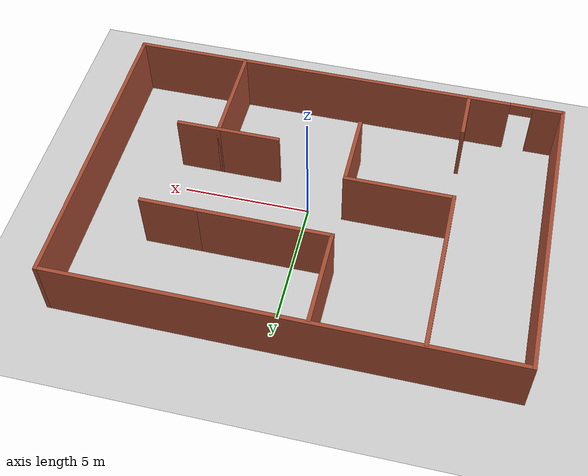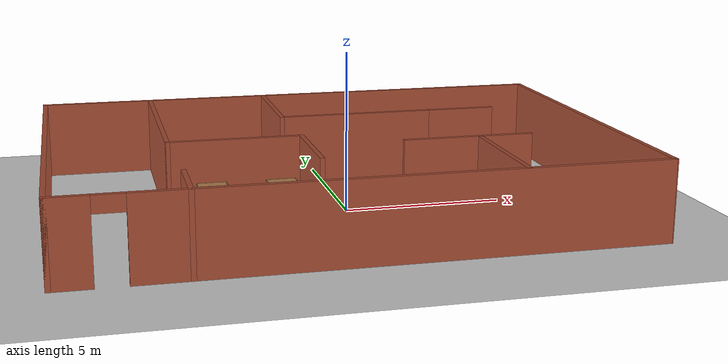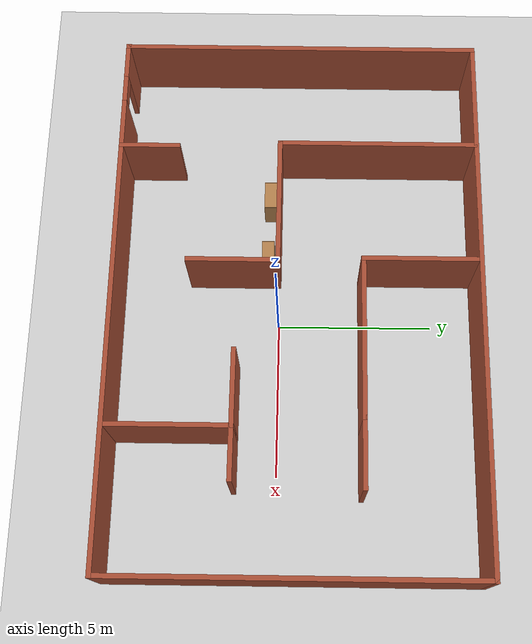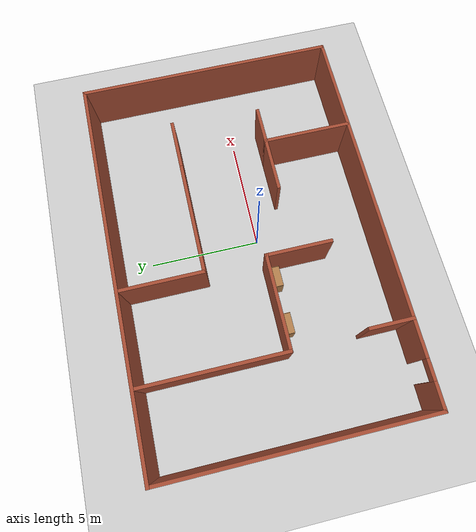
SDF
<sdf version="1.7">
 <world name="default">
  <light name="sun" type="directional">
   <pose>0 0 10 0 -0 0</pose>
   <diffuse>0.8 0.8 0.8 1</diffuse>
   <specular>0.2 0.2 0.2 1</specular>
   <attenuation>
    <range>1000</range>
    <constant>0.9</constant>
    <linear>0.01</linear>
    <quadratic>0.001</quadratic>
   </attenuation>
   <direction>-0.5 0.1 -0.9</direction>
   <spot><inner_angle>0</inner_angle><outer_angle>0</outer_angle><falloff>0</falloff></spot>
  </light>
  <model name="ground_plane">
   <static>1</static>
   <link name="link">
    <collision name="collision">
     <geometry><plane><normal>0 0 1</normal><size>100 100</size></plane></geometry>
     <surface>
      <contact><collide_bitmask>65535</collide_bitmask></contact>
      <friction><ode><mu>100</mu><mu2>50</mu2></ode></friction>
     </surface>
    </collision>
    <visual name="visual">
     <cast_shadows>0</cast_shadows>
     <geometry><plane><normal>0 0 1</normal><size>100 100</size></plane></geometry>
     <material>
      <script><uri>file://media/materials/scripts/gazebo.material</uri><name>Gazebo/Grey</name></script>
     </material>
    </visual>
   </link>
  </model>
  <gravity>0 0 -9.8</gravity>
  <magnetic_field>6e-06 2.3e-05 -4.2e-05</magnetic_field>
  <atmosphere type="adiabatic"/>
  <physics type="ode">
   <max_step_size>0.001</max_step_size>
   <real_time_factor>1</real_time_factor>
   <real_time_update_rate>1000</real_time_update_rate>
  </physics>
  <scene><ambient>0.4 0.4 0.4 1</ambient><background>0.7 0.7 0.7 1</background><shadows>1</shadows></scene>
  <audio><device>default</device></audio>
  <spherical_coordinates>
   <surface_model>EARTH_WGS84</surface_model>
   <latitude_deg>0</latitude_deg>
   <longitude_deg>0</longitude_deg>
   <elevation>0</elevation>
   <heading_deg>0</heading_deg>
  </spherical_coordinates>
  <model name="my_house">
   <pose>-0.107976 0.590678 0 0 -0 0</pose>
   <link name="Wall_10">
    <collision name="Wall_10_Collision">
     <geometry><box><size>11.75 0.15 2.5</size></box></geometry>
     <pose>0 0 1.25 0 -0 0</pose>
    </collision>
    <visual name="Wall_10_Visual">
     <pose>0 0 1.25 0 -0 0</pose>
     <geometry><box><size>11.75 0.15 2.5</size></box></geometry>
     <material>
      <script><uri>file://media/materials/scripts/gazebo.material</uri><name>Gazebo/Bricks</name></script>
      <ambient>1 1 1 1</ambient>
     </material>
     <meta><layer>0</layer></meta>
    </visual>
    <pose>-8.98864 9e-06 0 0 -0 -1.5708</pose>
   </link>
   <link name="Wall_12">
    <collision name="Wall_12_Collision">
     <geometry><box><size>6.5 0.15 2.5</size></box></geometry>
     <pose>0 0 1.25 0 -0 0</pose>
    </collision>
    <visual name="Wall_12_Visual">
     <pose>0 0 1.25 0 -0 0</pose>
     <geometry><box><size>6.5 0.15 2.5</size></box></geometry>
     <material>
      <script><uri>file://media/materials/scripts/gazebo.material</uri><name>Gazebo/Bricks</name></script>
      <ambient>1 1 1 1</ambient>
     </material>
     <meta><layer>0</layer></meta>
    </visual>
    <pose>-5.41983 2.56292 0 0 -0 -1.5708</pose>
   </link>
   <link name="Wall_14">
    <collision name="Wall_14_Collision">
     <geometry><box><size>2 0.15 2.5</size></box></geometry>
     <pose>0 0 1.25 0 -0 0</pose>
    </collision>
    <visual name="Wall_14_Visual">
     <pose>0 0 1.25 0 -0 0</pose>
     <geometry><box><size>2 0.15 2.5</size></box></geometry>
     <material>
      <script><uri>file://media/materials/scripts/gazebo.material</uri><name>Gazebo/Bricks</name></script>
      <ambient>1 1 1 1</ambient>
     </material>
     <meta><layer>0</layer></meta>
    </visual>
    <pose>-5.28026 -4.87501 0 0 -0 1.5708</pose>
   </link>
   <link name="Wall_16">
    <collision name="Wall_16_Collision">
     <geometry><box><size>4.25 0.15 2.5</size></box></geometry>
     <pose>0 0 1.25 0 -0 0</pose>
    </collision>
    <visual name="Wall_16_Visual">
     <pose>0 0 1.25 0 -0 0</pose>
     <geometry><box><size>4.25 0.15 2.5</size></box></geometry>
     <material>
      <script><uri>file://media/materials/scripts/gazebo.material</uri><name>Gazebo/Bricks</name></script>
      <ambient>1 1 1 1</ambient>
     </material>
     <meta><layer>0</layer></meta>
    </visual>
    <pose>-3.36984 -0.612078 0 0 -0 0</pose>
   </link>
   <link name="Wall_17">
    <collision name="Wall_17_Collision">
     <geometry><box><size>3 0.15 2.5</size></box></geometry>
     <pose>0 0 1.25 0 -0 0</pose>
    </collision>
    <visual name="Wall_17_Visual">
     <pose>0 0 1.25 0 -0 0</pose>
     <geometry><box><size>3 0.15 2.5</size></box></geometry>
     <material>
      <script><uri>file://media/materials/scripts/gazebo.material</uri><name>Gazebo/Bricks</name></script>
      <ambient>1 1 1 1</ambient>
     </material>
     <meta><layer>0</layer></meta>
    </visual>
    <pose>-1.31984 -2.03708 0 0 -0 -1.5708</pose>
   </link>
   <link name="Wall_19">
    <collision name="Wall_19_Collision">
     <geometry><box><size>3.75 0.15 2.5</size></box></geometry>
     <pose>0 0 1.25 0 -0 0</pose>
    </collision>
    <visual name="Wall_19_Visual">
     <pose>0 0 1.25 0 -0 0</pose>
     <geometry><box><size>3.75 0.15 2.5</size></box></geometry>
     <material>
      <script><uri>file://media/materials/scripts/gazebo.material</uri><name>Gazebo/Bricks</name></script>
      <ambient>1 1 1 1</ambient>
     </material>
     <meta><layer>0</layer></meta>
    </visual>
    <pose>-1.41878 3.8914 0 0 -0 -1.5708</pose>
   </link>
   <link name="Wall_20">
    <collision name="Wall_20_Collision">
     <geometry><box><size>5.25 0.15 2.5</size></box></geometry>
     <pose>0 0 1.25 0 -0 0</pose>
    </collision>
    <visual name="Wall_20_Visual">
     <pose>0 0 1.25 0 -0 0</pose>
     <geometry><box><size>5.25 0.15 2.5</size></box></geometry>
     <material>
      <script><uri>file://media/materials/scripts/gazebo.material</uri><name>Gazebo/Bricks</name></script>
      <ambient>1 1 1 1</ambient>
     </material>
     <meta><layer>0</layer></meta>
    </visual>
    <pose>1.13122 2.0914 0 0 -0 0</pose>
   </link>
   <link name="Wall_21">
    <collision name="Wall_21_Collision">
     <geometry><box><size>2.25 0.15 2.5</size></box></geometry>
     <pose>0 0 1.25 0 -0 0</pose>
    </collision>
    <visual name="Wall_21_Visual">
     <pose>0 0 1.25 0 -0 0</pose>
     <geometry><box><size>2.25 0.15 2.5</size></box></geometry>
     <material>
      <script><uri>file://media/materials/scripts/gazebo.material</uri><name>Gazebo/Bricks</name></script>
      <ambient>1 1 1 1</ambient>
     </material>
     <meta><layer>0</layer></meta>
    </visual>
    <pose>4.73122 2.0914 0 0 -0 0</pose>
   </link>
   <link name="Wall_23">
    <collision name="Wall_23_Collision">
     <geometry><box><size>4 0.15 2.5</size></box></geometry>
     <pose>0 0 1.25 0 -0 0</pose>
    </collision>
    <visual name="Wall_23_Visual">
     <pose>0 0 1.25 0 -0 0</pose>
     <geometry><box><size>4 0.15 2.5</size></box></geometry>
     <material>
      <script><uri>file://media/materials/scripts/gazebo.material</uri><name>Gazebo/Bricks</name></script>
      <ambient>1 1 1 1</ambient>
     </material>
     <meta><layer>0</layer></meta>
    </visual>
    <pose>3.97799 -3.82849 0 0 -0 1.5708</pose>
   </link>
   <link name="Wall_24">
    <collision name="Wall_24_Collision">
     <geometry><box><size>2.5 0.15 2.5</size></box></geometry>
     <pose>0 0 1.25 0 -0 0</pose>
    </collision>
    <visual name="Wall_24_Visual">
     <pose>0 0 1.25 0 -0 0</pose>
     <geometry><box><size>2.5 0.15 2.5</size></box></geometry>
     <material>
      <script><uri>file://media/materials/scripts/gazebo.material</uri><name>Gazebo/Bricks</name></script>
      <ambient>1 1 1 1</ambient>
     </material>
     <meta><layer>0</layer></meta>
    </visual>
    <pose>2.803 -1.90349 0 0 -0 3.14159</pose>
   </link>
   <link name="Wall_26">
    <collision name="Wall_26_Collision">
     <geometry><box><size>1.75 0.15 2.5</size></box></geometry>
     <pose>0 0 1.25 0 -0 0</pose>
    </collision>
    <visual name="Wall_26_Visual">
     <pose>0 0 1.25 0 -0 0</pose>
     <geometry><box><size>1.75 0.15 2.5</size></box></geometry>
     <material>
      <script><uri>file://media/materials/scripts/gazebo.material</uri><name>Gazebo/Bricks</name></script>
      <ambient>1 1 1 1</ambient>
     </material>
     <meta><layer>0</layer></meta>
    </visual>
    <pose>4.77799 -1.90349 0 0 -0 0</pose>
   </link>
   <link name="Wall_7">
    <pose>-0.313637 -5.79999 0 0 -0 0</pose>
    <visual name="Wall_7_Visual_0">
     <pose>-8.1301 0 1.25 0 -0 0</pose>
     <geometry><box><size>1.2398 0.15 2.5</size></box></geometry>
     <material>
      <script><uri>file://media/materials/scripts/gazebo.material</uri><name>Gazebo/Bricks</name></script>
      <ambient>1 1 1 1</ambient>
     </material>
     <meta><layer>0</layer></meta>
    </visual>
    <collision name="Wall_7_Collision_0">
     <geometry><box><size>1.2398 0.15 2.5</size></box></geometry>
     <pose>-8.1301 0 1.25 0 -0 0</pose>
    </collision>
    <visual name="Wall_7_Visual_1">
     <pose>1.0699 0 1.25 0 -0 0</pose>
     <geometry><box><size>15.3602 0.15 2.5</size></box></geometry>
     <material>
      <script><uri>file://media/materials/scripts/gazebo.material</uri><name>Gazebo/Bricks</name></script>
      <ambient>1 1 1 1</ambient>
     </material>
     <meta><layer>0</layer></meta>
    </visual>
    <collision name="Wall_7_Collision_1">
     <geometry><box><size>15.3602 0.15 2.5</size></box></geometry>
     <pose>1.0699 0 1.25 0 -0 0</pose>
    </collision>
    <visual name="Wall_7_Visual_2">
     <pose>-7.0602 0 2.25 0 -0 0</pose>
     <geometry><box><size>0.9 0.15 0.5</size></box></geometry>
     <material>
      <script><uri>file://media/materials/scripts/gazebo.material</uri><name>Gazebo/Bricks</name></script>
      <ambient>1 1 1 1</ambient>
     </material>
     <meta><layer>0</layer></meta>
    </visual>
    <collision name="Wall_7_Collision_2">
     <geometry><box><size>0.9 0.15 0.5</size></box></geometry>
     <pose>-7.0602 0 2.25 0 -0 0</pose>
    </collision>
   </link>
   <link name="Wall_8">
    <collision name="Wall_8_Collision">
     <geometry><box><size>11.75 0.15 2.5</size></box></geometry>
     <pose>0 0 1.25 0 -0 0</pose>
    </collision>
    <visual name="Wall_8_Visual">
     <pose>0 0 1.25 0 -0 0</pose>
     <geometry><box><size>11.75 0.15 2.5</size></box></geometry>
     <material>
      <script><uri>file://media/materials/scripts/gazebo.material</uri><name>Gazebo/Bricks</name></script>
      <ambient>1 1 1 1</ambient>
     </material>
     <meta><layer>0</layer></meta>
    </visual>
    <pose>8.36136 9e-06 0 0 -0 1.5708</pose>
   </link>
   <link name="Wall_9">
    <collision name="Wall_9_Collision">
     <geometry><box><size>17.5 0.15 2.5</size></box></geometry>
     <pose>0 0 1.25 0 -0 0</pose>
    </collision>
    <visual name="Wall_9_Visual">
     <pose>0 0 1.25 0 -0 0</pose>
     <geometry><box><size>17.5 0.15 2.5</size></box></geometry>
     <material>
      <script><uri>file://media/materials/scripts/gazebo.material</uri><name>Gazebo/Bricks</name></script>
      <ambient>1 1 1 1</ambient>
     </material>
     <meta><layer>0</layer></meta>
    </visual>
    <pose>-0.313637 5.80001 0 0 -0 3.14159</pose>
   </link>
   <static>1</static>
  </model>
  <model name="bookshelf">
   <static>1</static>
   <link name="link">
    <inertial><mass>1</mass></inertial>
    <collision name="back">
     <pose>0 0.005 0.6 0 -0 0</pose>
     <geometry><box><size>0.9 0.01 1.2</size></box></geometry>
    </collision>
    <visual name="visual1">
     <pose>0 0.005 0.6 0 -0 0</pose>
     <geometry><box><size>0.9 0.01 1.2</size></box></geometry>
     <material>
      <script><uri>file://media/materials/scripts/gazebo.material</uri><name>Gazebo/Wood</name></script>
     </material>
    </visual>
    <collision name="left_side">
     <pose>0.45 -0.195 0.6 0 -0 0</pose>
     <geometry><box><size>0.02 0.4 1.2</size></box></geometry>
    </collision>
    <visual name="visual2">
     <pose>0.45 -0.195 0.6 0 -0 0</pose>
     <geometry><box><size>0.02 0.4 1.2</size></box></geometry>
     <material>
      <script><uri>file://media/materials/scripts/gazebo.material</uri><name>Gazebo/Wood</name></script>
     </material>
    </visual>
    <collision name="right_side">
     <pose>-0.45 -0.195 0.6 0 -0 0</pose>
     <geometry><box><size>0.02 0.4 1.2</size></box></geometry>
    </collision>
    <visual name="visual3">
     <pose>-0.45 -0.195 0.6 0 -0 0</pose>
     <geometry><box><size>0.02 0.4 1.2</size></box></geometry>
     <material>
      <script><uri>file://media/materials/scripts/gazebo.material</uri><name>Gazebo/Wood</name></script>
     </material>
    </visual>
    <collision name="bottom">
     <pose>0 -0.195 0.03 0 -0 0</pose>
     <geometry><box><size>0.88 0.4 0.06</size></box></geometry>
    </collision>
    <visual name="visual4">
     <pose>0 -0.195 0.03 0 -0 0</pose>
     <geometry><box><size>0.88 0.4 0.06</size></box></geometry>
     <material>
      <script><uri>file://media/materials/scripts/gazebo.material</uri><name>Gazebo/Wood</name></script>
     </material>
    </visual>
    <collision name="top">
     <pose>0 -0.195 1.19 0 -0 0</pose>
     <geometry><box><size>0.88 0.4 0.02</size></box></geometry>
    </collision>
    <visual name="visual5">
     <pose>0 -0.195 1.19 0 -0 0</pose>
     <geometry><box><size>0.88 0.4 0.02</size></box></geometry>
     <material>
      <script><uri>file://media/materials/scripts/gazebo.material</uri><name>Gazebo/Wood</name></script>
     </material>
    </visual>
    <collision name="low_shelf">
     <pose>0 -0.195 0.43 0 -0 0</pose>
     <geometry><box><size>0.88 0.4 0.02</size></box></geometry>
    </collision>
    <visual name="visual6">
     <pose>0 -0.195 0.43 0 -0 0</pose>
     <geometry><box><size>0.88 0.4 0.02</size></box></geometry>
     <material>
      <script><uri>file://media/materials/scripts/gazebo.material</uri><name>Gazebo/Wood</name></script>
     </material>
    </visual>
    <collision name="high_shelf">
     <pose>0 -0.195 0.8 0 -0 0</pose>
     <geometry><box><size>0.88 0.4 0.02</size></box></geometry>
    </collision>
    <visual name="visual7">
     <pose>0 -0.195 0.8 0 -0 0</pose>
     <geometry><box><size>0.88 0.4 0.02</size></box></geometry>
     <material>
      <script><uri>file://media/materials/scripts/gazebo.material</uri><name>Gazebo/Wood</name></script>
     </material>
    </visual>
   </link>
   <pose>-2.12114 -0.177617 0 0 -0 0</pose>
  </model>
  <model name="bookshelf_clone">
   <static>1</static>
   <link name="link">
    <inertial><mass>1</mass></inertial>
    <collision name="back">
     <pose>0 0.005 0.6 0 -0 0</pose>
     <geometry><box><size>0.9 0.01 1.2</size></box></geometry>
    </collision>
    <visual name="visual1">
     <pose>0 0.005 0.6 0 -0 0</pose>
     <geometry><box><size>0.9 0.01 1.2</size></box></geometry>
     <material>
      <script><uri>file://media/materials/scripts/gazebo.material</uri><name>Gazebo/Wood</name></script>
     </material>
    </visual>
    <collision name="left_side">
     <pose>0.45 -0.195 0.6 0 -0 0</pose>
     <geometry><box><size>0.02 0.4 1.2</size></box></geometry>
    </collision>
    <visual name="visual2">
     <pose>0.45 -0.195 0.6 0 -0 0</pose>
     <geometry><box><size>0.02 0.4 1.2</size></box></geometry>
     <material>
      <script><uri>file://media/materials/scripts/gazebo.material</uri><name>Gazebo/Wood</name></script>
     </material>
    </visual>
    <collision name="right_side">
     <pose>-0.45 -0.195 0.6 0 -0 0</pose>
     <geometry><box><size>0.02 0.4 1.2</size></box></geometry>
    </collision>
    <visual name="visual3">
     <pose>-0.45 -0.195 0.6 0 -0 0</pose>
     <geometry><box><size>0.02 0.4 1.2</size></box></geometry>
     <material>
      <script><uri>file://media/materials/scripts/gazebo.material</uri><name>Gazebo/Wood</name></script>
     </material>
    </visual>
    <collision name="bottom">
     <pose>0 -0.195 0.03 0 -0 0</pose>
     <geometry><box><size>0.88 0.4 0.06</size></box></geometry>
    </collision>
    <visual name="visual4">
     <pose>0 -0.195 0.03 0 -0 0</pose>
     <geometry><box><size>0.88 0.4 0.06</size></box></geometry>
     <material>
      <script><uri>file://media/materials/scripts/gazebo.material</uri><name>Gazebo/Wood</name></script>
     </material>
    </visual>
    <collision name="top">
     <pose>0 -0.195 1.19 0 -0 0</pose>
     <geometry><box><size>0.88 0.4 0.02</size></box></geometry>
    </collision>
    <visual name="visual5">
     <pose>0 -0.195 1.19 0 -0 0</pose>
     <geometry><box><size>0.88 0.4 0.02</size></box></geometry>
     <material>
      <script><uri>file://media/materials/scripts/gazebo.material</uri><name>Gazebo/Wood</name></script>
     </material>
    </visual>
    <collision name="low_shelf">
     <pose>0 -0.195 0.43 0 -0 0</pose>
     <geometry><box><size>0.88 0.4 0.02</size></box></geometry>
    </collision>
    <visual name="visual6">
     <pose>0 -0.195 0.43 0 -0 0</pose>
     <geometry><box><size>0.88 0.4 0.02</size></box></geometry>
     <material>
      <script><uri>file://media/materials/scripts/gazebo.material</uri><name>Gazebo/Wood</name></script>
     </material>
    </visual>
    <collision name="high_shelf">
     <pose>0 -0.195 0.8 0 -0 0</pose>
     <geometry><box><size>0.88 0.4 0.02</size></box></geometry>
    </collision>
    <visual name="visual7">
     <pose>0 -0.195 0.8 0 -0 0</pose>
     <geometry><box><size>0.88 0.4 0.02</size></box></geometry>
     <material>
      <script><uri>file://media/materials/scripts/gazebo.material</uri><name>Gazebo/Wood</name></script>
     </material>
    </visual>
   </link>
   <pose>-4.24924 -0.135499 0 0 -0 0</pose>
  </model>
 </world>
</sdf>
